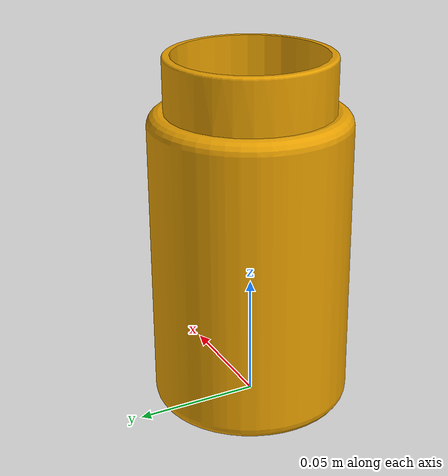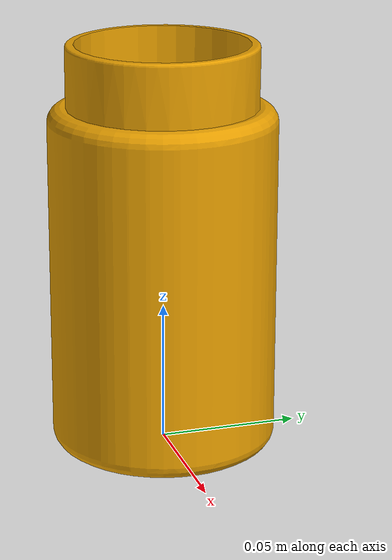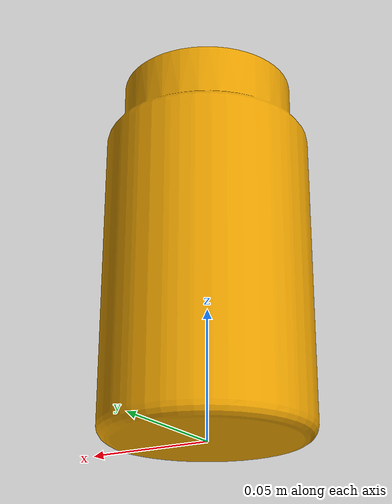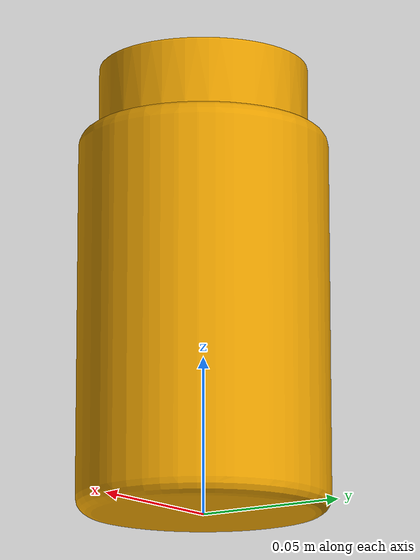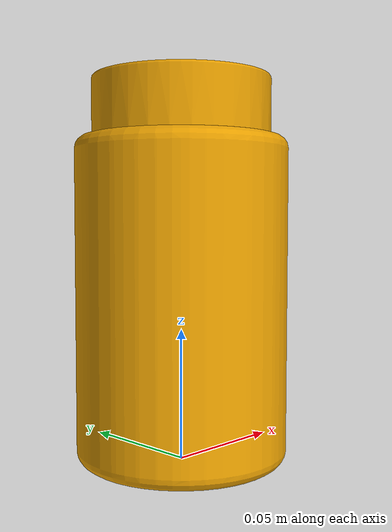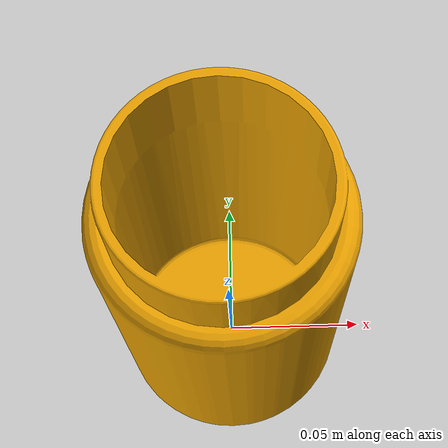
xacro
<?xml version="1.0" ?>
<robot xmlns:xacro="http://www.ros.org/wiki/xacro" name="bottle">
    <link name='bottle'>
        <visual name='visual'>
            <geometry>
                <mesh filename="meshes/bottle.stl"/>
            </geometry>
            <material name="clay" />
        </visual>
    </link>
</robot>
